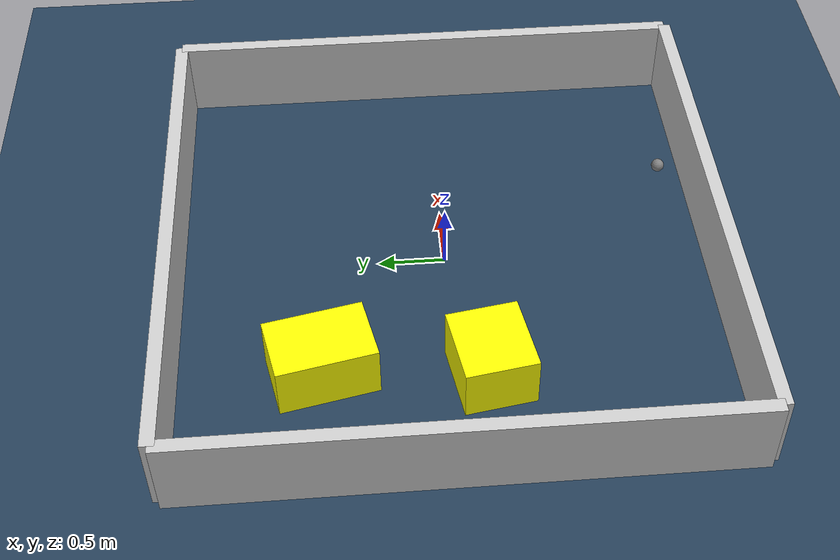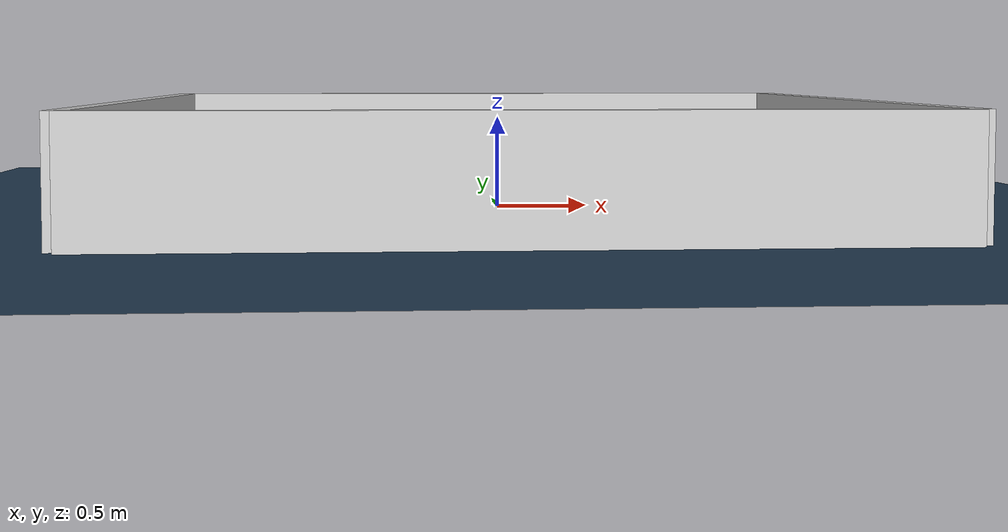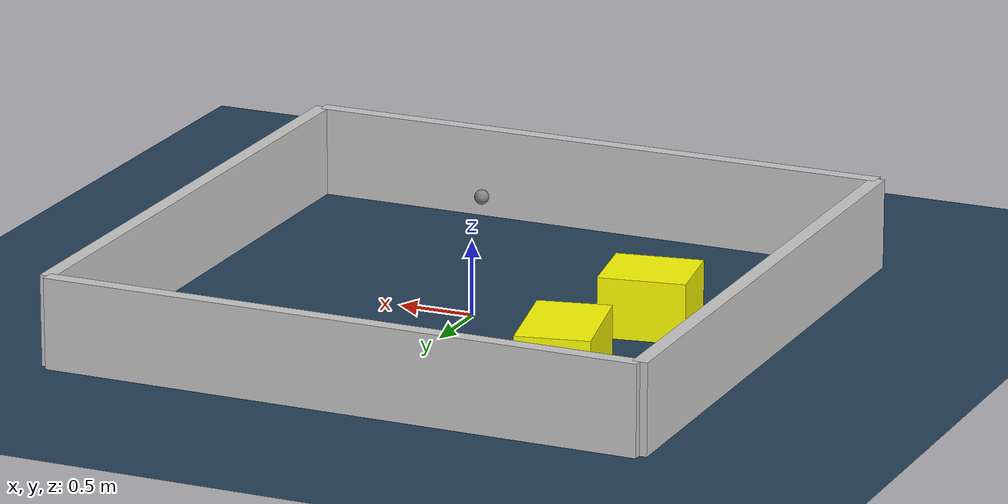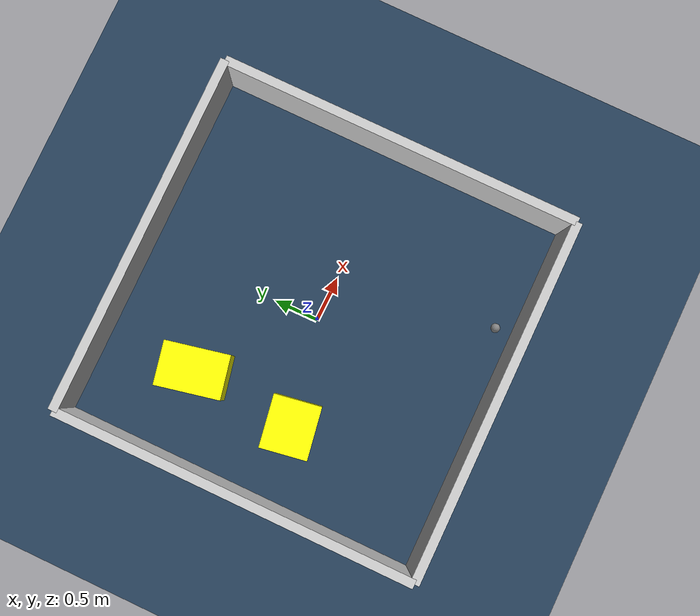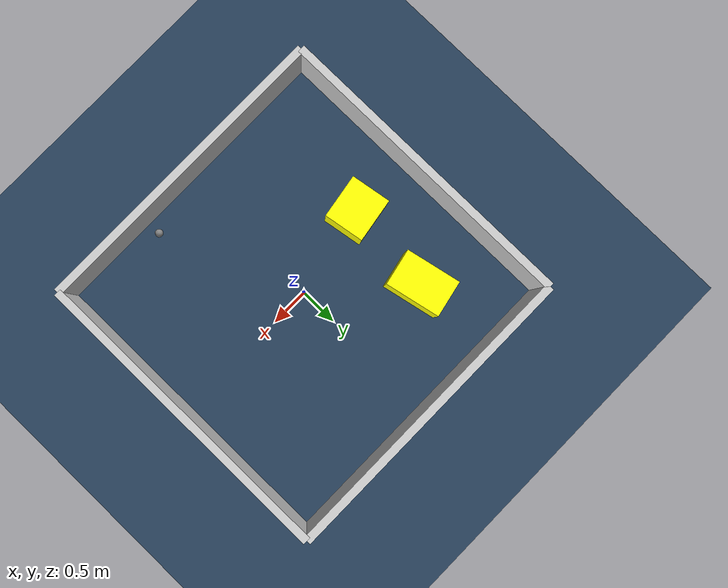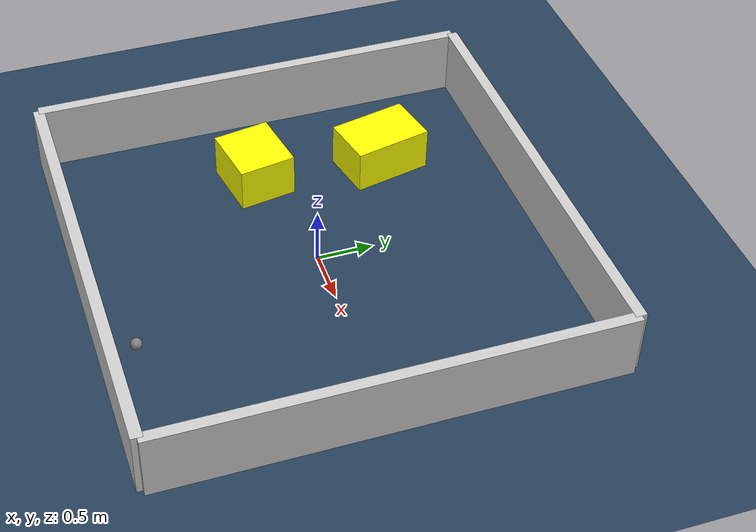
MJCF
<?xml version="1.0" ?>
<mujoco model="generated_environment">
  <option timestep="0.01" integrator="RK4" cone="elliptic"/>
  <default>
    <geom density="1"/>
  </default>
  <asset>
    <texture builtin="gradient" height="3072" rgb1="0.3 0.5 0.7" rgb2="0 0 0" type="skybox" width="512"/>
    <texture builtin="checker" height="300" mark="edge" markrgb="0.8 0.8 0.8" name="groundplane" rgb1="0.2 0.3 0.4" rgb2="0.1 0.2 0.3" type="2d" width="300"/>
    <material name="groundplane" reflectance="0.2" texrepeat="5 5" texture="groundplane" texuniform="true"/>
    <material name="robot" rgba="0.0 1.0 0.0 1"/>
  </asset>
  <worldbody>
    <light dir="0 0 -1" directional="true" pos="0 0 1.5"/>
    <geom condim="4" friction="1.0 0.005 0.001" material="groundplane" name="floor" size="0 0 0.05" type="plane"/>
    <body name="walls">
      <geom name="wall_1" condim="4" pos="-2.0 0.0 0.3" rgba="0.800000011920929 0.800000011920929 0.800000011920929 1.0" size="0.05 2.0 0.3" type="box"/>
      <geom name="wall_2" condim="4" pos="2.0 0.0 0.3" rgba="0.800000011920929 0.800000011920929 0.800000011920929 1.0" size="0.05 2.0 0.3" type="box"/>
      <geom name="wall_3" condim="4" pos="0.0 -2.0 0.3" rgba="0.800000011920929 0.800000011920929 0.800000011920929 1.0" size="2.0 0.05 0.3" type="box"/>
      <geom name="wall_4" condim="4" pos="0.0 2.0 0.3" rgba="0.800000011920929 0.800000011920929 0.800000011920929 1.0" size="2.0 0.05 0.3" type="box"/>
    </body>
    <body name="robot">
      <joint name="joint_x" type="slide" pos="0 0 0" axis="1 0 0"/>
      <joint name="joint_y" type="slide" pos="0 0 0" axis="0 1 0"/>
      <geom name="robot" type="sphere" pos="0.7118268173817319 -1.7434092002801642 0.2" size="0.05" mass="5." friction="1.0 0.005 0.0001" condim="4"/>
      <site name="sensor_ball"/>
    </body>
    <body name="obstacle_1_movable">
      <geom name="obstacle_1_movable" condim="4" pos="-1.1401545237043313 -0.23047758180640487 0.2" euler="0 0 189.41509579935519" friction="1.0 0.005 0.001" rgba="1 1 0 1" size="0.287793482117343 0.25892744565117054 0.2" type="box" mass="0.1"/>
      <joint type="free"/>
    </body>
    <body name="obstacle_2_movable">
      <geom name="obstacle_2_movable" condim="4" pos="-1.0430206332676195 0.937356375688581 0.2" euler="0 0 282.08350955583137" friction="1.0 0.005 0.001" rgba="1 1 0 1" size="0.3577047816057125 0.24084671896463272 0.2" type="box" mass="0.1"/>
      <joint type="free"/>
    </body>
  </worldbody>
  <actuator>
    <motor name="actuator_x" joint="joint_x" gear="1" ctrlrange="-1 1"/>
    <motor name="actuator_y" joint="joint_y" gear="1" ctrlrange="-1 1"/>
  </actuator>
</mujoco>
